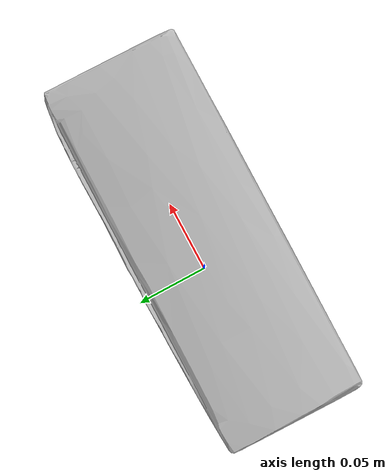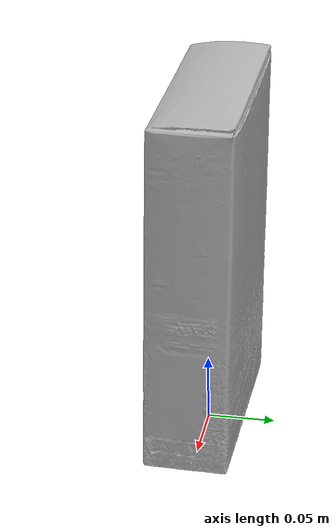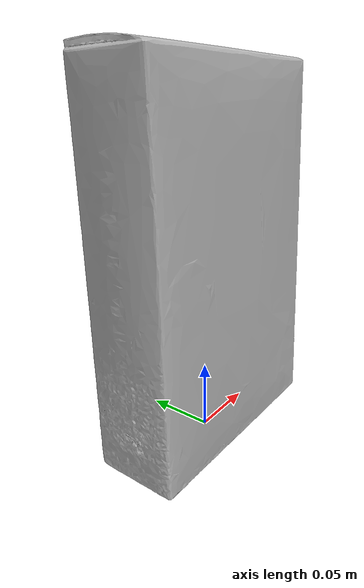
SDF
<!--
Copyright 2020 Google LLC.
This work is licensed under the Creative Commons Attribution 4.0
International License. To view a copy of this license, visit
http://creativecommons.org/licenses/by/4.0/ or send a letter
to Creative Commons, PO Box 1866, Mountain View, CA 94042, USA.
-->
<?xml version="1.0" ?>
<sdf version="1.6">
  <model name="Threshold_Hand_Towel_Blue_Medallion_16_x_27">
    <link name="link_0">
      <visual name="visual">
        <geometry>
          <mesh>
            <uri>meshes/model.obj</uri>
          </mesh>
        </geometry>
      </visual>
      <collision name="collision_0">
        <geometry>
          <mesh>
            <uri>meshes/model.obj</uri>
          </mesh>
        </geometry>
      </collision>
    </link>
  </model>
</sdf>
